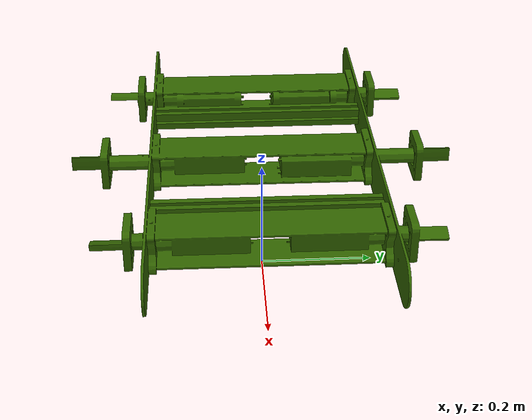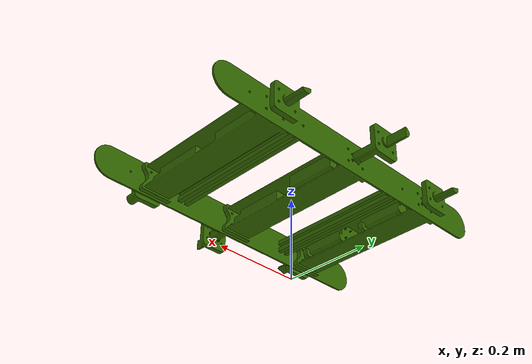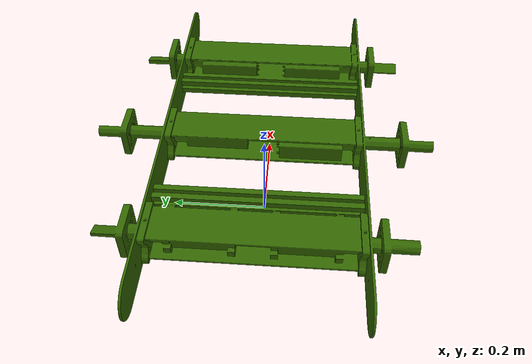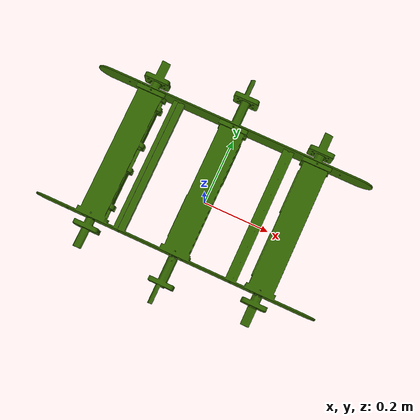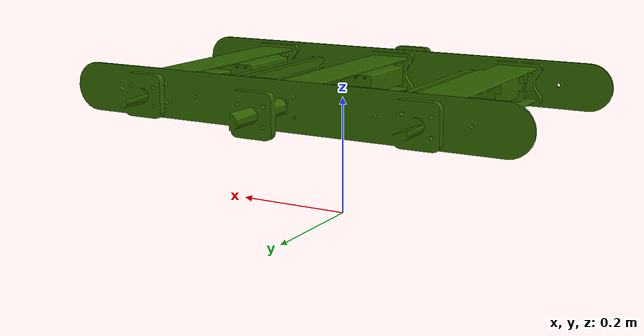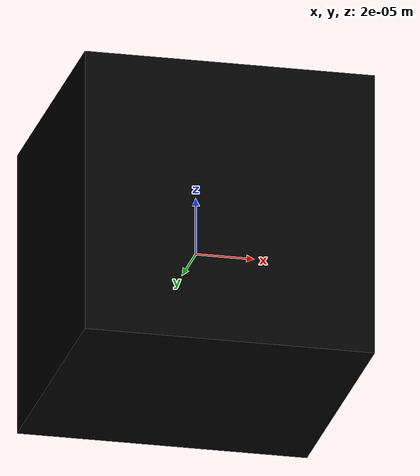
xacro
<?xml version="1.0" ?>
<robot name="base" xmlns:xacro="http://ros.org/wiki/xacro">

<xacro:property name="w_radius" value="${108.743/1e3}"/>

<link name="base_footprint">
    <visual>
        <geometry>
            <box size="0.0001 0.0001 0.0001"/>
        </geometry>
        <material name="transparente">
            <color rgba="0 0 0 0"/>
        </material>
    </visual>
</link>

<joint name="footprint_base_joint" type="fixed">
    <parent link="base_footprint"/>
    <child link="base_link"/>
    <origin xyz="0 0 ${w_radius*2}" rpy="0 0 0"/>
</joint>

<link name="base_link">

    <inertial>
        <origin xyz="${0/1e3} 0 ${1.417/1000}" rpy="${pi/2} 0 0"/>
        <mass value="5.771"/>
        <inertia ixx="${207161.695/(1e6)}"
                 ixy="${0}"                 iyy="${117325.409/(1e6)}"
                 ixz="${0}"                 iyz="${0}"                  izz="${320415.187/(1e6)}"/>
    </inertial>
    <visual>
        <origin xyz="${0/1e3} 0 0" rpy="${pi/2} 0 0"/>
        <geometry>
            <mesh filename="package://hexapodo_description/meshes/chassis_piezas.stl" scale="0.01 0.01 0.01"/>
        </geometry>
        <material name="base_link_material">
            <color rgba="${51/255} ${102/255} ${0/255} 1"/>
        </material>
    </visual>
    <collision>
        <origin xyz="${0/1e3} 0 0" rpy="${pi/2} 0 0"/>
        <geometry>
            <mesh filename="package://hexapodo_description/meshes/chassis_piezas.stl" scale="0.01 0.01 0.01"/>
        </geometry>
    </collision>

</link>

</robot>
